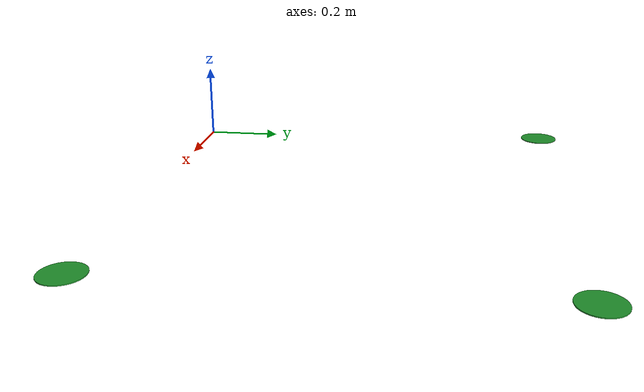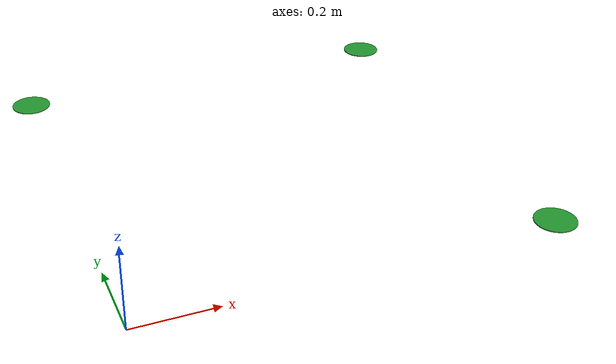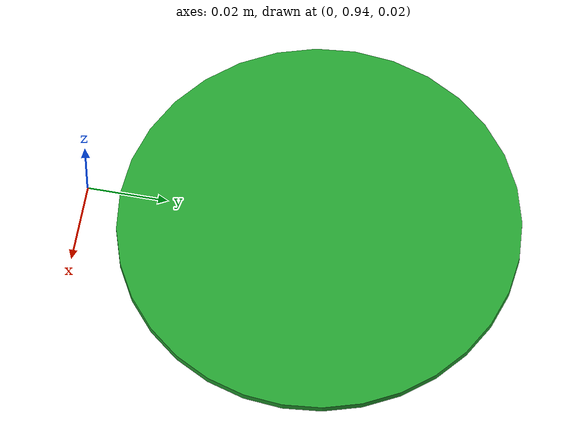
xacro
<?xml version="1.0"?>
<robot name="ambiente" xmlns:xacro="http://ros.org/wiki/xacro">
 <xacro:include filename="$(find turtlebot3_description)/urdf/ambiente.gazebo.xacro"/>

 <link name="map"/>

 <joint name="green_1_circle_joint" type="fixed">
    <parent link="map"/>
    <child link="green_1_circle_link"/>
    <origin xyz="1.0 0.0 0.01" rpy="0 0 0"/>
  </joint>

  <link name="green_1_circle_link">
    <visual>
      <origin xyz="0 0 0.0" rpy="0 0 0"/>
      <geometry>
        <mesh filename="package://turtlebot3_description/meshes/circle.stl" scale="0.05 0.05 0.05"/>
      </geometry>
      <material name="green"/>
    </visual>

    <collision>
      <origin xyz="-0.032 0 0.070" rpy="0 0 0"/>
      <geometry>
        <box size="0.140 0.140 0.143"/>
      </geometry>
    </collision>

    <inertial>
      <origin xyz="0 0 0" />
      <mass value="0.005" />
      <inertia ixx="0.001" ixy="0.0" ixz="0.0"
               iyy="0.001" iyz="0.0"
               izz="0.001" />
    </inertial>
  </link>

  <joint name="green_2_circle_joint" type="fixed">
    <parent link="map"/>
    <child link="green_2_circle_link"/>
    <origin xyz="0.0 1.0 0.01" rpy="0 0 0"/>
  </joint>

  <link name="green_2_circle_link">
    <visual>
      <origin xyz="0 0 0.0" rpy="0 0 0"/>
      <geometry>
        <mesh filename="package://turtlebot3_description/meshes/circle.stl" scale="0.05 0.05 0.05"/>
      </geometry>
      <material name="green"/>
    </visual>
  </link>

  <joint name="green_3_circle_joint" type="fixed">
    <parent link="map"/>
    <child link="green_3_circle_link"/>
    <origin xyz="1.0 1.0 0.01" rpy="0 0 0"/>
  </joint>

  <link name="green_3_circle_link">
    <visual>
      <origin xyz="0 0 0.0" rpy="0 0 0"/>
      <geometry>
        <mesh filename="package://turtlebot3_description/meshes/circle.stl" scale="0.05 0.05 0.05"/>
      </geometry>
      <material name="green"/>
    </visual>
  </link>

  <joint name="camera_roof_joint" type="fixed">
    <parent link="map"/>
    <child link="camera_roof_link"/>
    <origin xyz="0.0 0.0 0.0" rpy="0 0 0"/>
  </joint>
  <link name="camera_roof_link"/>

<!--###################AJUSTAR POSICAO AQUI#########################-->
  <joint name="camera_rgb_joint" type="fixed">
    <origin xyz="0 0 2.5" rpy="0 1.57 0"/>
    <parent link="camera_roof_link"/>
    <child link="camera_rgb_frame"/>
  </joint>
  <link name="camera_rgb_frame"/>

  <joint name="camera_rgb_optical_joint" type="fixed">
    <origin xyz="0 0 0" rpy="-1.57 0 -1.57"/>
    <parent link="camera_rgb_frame"/>
    <child link="camera_rgb_optical_frame"/>
  </joint>
  <link name="camera_rgb_optical_frame"/>

</robot>
